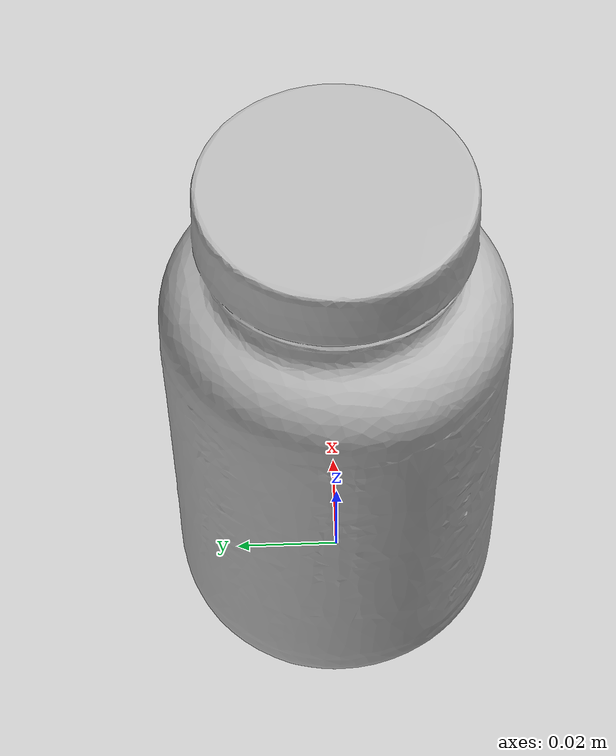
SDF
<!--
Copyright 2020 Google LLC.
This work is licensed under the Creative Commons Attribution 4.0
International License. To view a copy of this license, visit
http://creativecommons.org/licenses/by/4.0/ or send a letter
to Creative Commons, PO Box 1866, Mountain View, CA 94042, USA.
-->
<?xml version="1.0" ?>
<sdf version="1.6">
  <model name="Borage_GLA240Gamma_Tocopherol">
    <link name="link_0">
      <visual name="visual">
        <geometry>
          <mesh>
            <uri>meshes/model.obj</uri>
          </mesh>
        </geometry>
      </visual>
      <collision name="collision_0">
        <geometry>
          <mesh>
            <uri>meshes/model.obj</uri>
          </mesh>
        </geometry>
      </collision>
    </link>
  </model>
</sdf>
